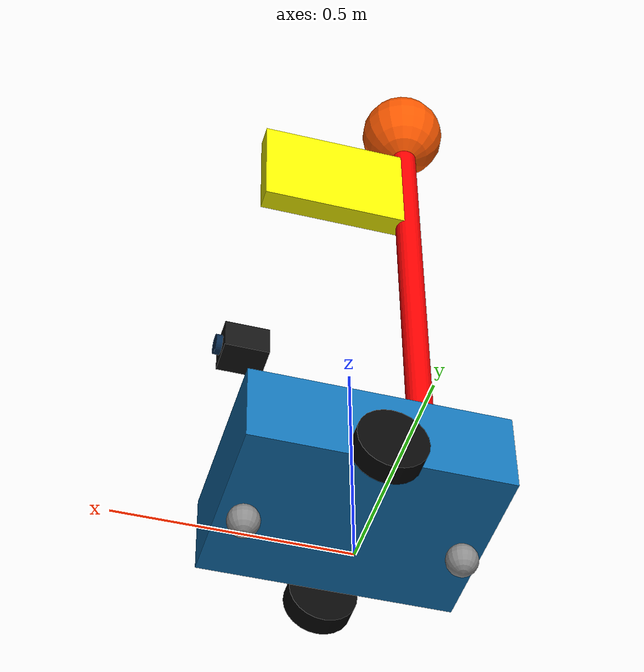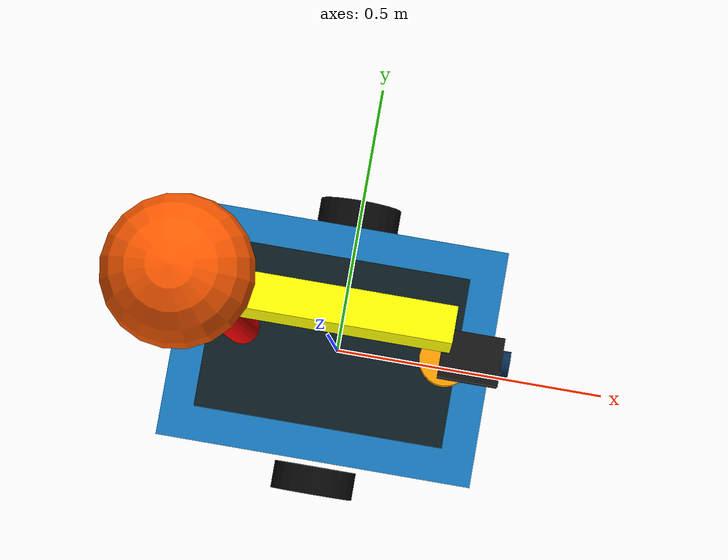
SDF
<sdf version="1.8">
  <model name="my_robot_inspection">
    <pose>0 0 0 0 0 0</pose>
    <static>false</static>
    <self_collide>false</self_collide>

    <link name="base_link">
      <pose>0 0 0.16 0 0 0</pose>
      <inertial>
        <mass>10.0</mass>
        <inertia>
          <ixx>0.15</ixx>
          <iyy>0.28</iyy>
          <izz>0.37</izz>
        </inertia>
      </inertial>

      <collision name="base_collision">
        <geometry>
          <box>
            <size>0.56 0.42 0.18</size>
          </box>
        </geometry>
      </collision>

      <visual name="base_visual">
        <geometry>
          <box>
            <size>0.56 0.42 0.18</size>
          </box>
        </geometry>
        <material>
          <ambient>0.08 0.36 0.58 1</ambient>
          <diffuse>0.08 0.46 0.72 1</diffuse>
          <specular>0.2 0.2 0.2 1</specular>
        </material>
      </visual>

      <visual name="top_panel_visual">
        <pose>0 0 0.105 0 0 0</pose>
        <geometry>
          <box>
            <size>0.44 0.30 0.03</size>
          </box>
        </geometry>
        <material>
          <ambient>0.04 0.08 0.10 1</ambient>
          <diffuse>0.04 0.10 0.12 1</diffuse>
        </material>
      </visual>
    </link>

    <link name="left_wheel">
      <pose>0 0.245 0.075 -1.5708 0 0</pose>
      <inertial>
        <mass>0.7</mass>
        <inertia>
          <ixx>0.0012</ixx>
          <iyy>0.0012</iyy>
          <izz>0.0020</izz>
        </inertia>
      </inertial>
      <collision name="collision">
        <geometry>
          <cylinder>
            <radius>0.075</radius>
            <length>0.05</length>
          </cylinder>
        </geometry>
        <surface>
          <friction>
            <ode>
              <mu>1.5</mu>
              <mu2>1.5</mu2>
            </ode>
          </friction>
        </surface>
      </collision>
      <visual name="visual">
        <geometry>
          <cylinder>
            <radius>0.075</radius>
            <length>0.05</length>
          </cylinder>
        </geometry>
        <material>
          <ambient>0.03 0.03 0.03 1</ambient>
          <diffuse>0.03 0.03 0.03 1</diffuse>
        </material>
      </visual>
    </link>

    <link name="right_wheel">
      <pose>0 -0.245 0.075 -1.5708 0 0</pose>
      <inertial>
        <mass>0.7</mass>
        <inertia>
          <ixx>0.0012</ixx>
          <iyy>0.0012</iyy>
          <izz>0.0020</izz>
        </inertia>
      </inertial>
      <collision name="collision">
        <geometry>
          <cylinder>
            <radius>0.075</radius>
            <length>0.05</length>
          </cylinder>
        </geometry>
        <surface>
          <friction>
            <ode>
              <mu>1.5</mu>
              <mu2>1.5</mu2>
            </ode>
          </friction>
        </surface>
      </collision>
      <visual name="visual">
        <geometry>
          <cylinder>
            <radius>0.075</radius>
            <length>0.05</length>
          </cylinder>
        </geometry>
        <material>
          <ambient>0.03 0.03 0.03 1</ambient>
          <diffuse>0.03 0.03 0.03 1</diffuse>
        </material>
      </visual>
    </link>

    <link name="front_castor">
      <pose>0.23 0 0.035 0 0 0</pose>
      <inertial>
        <mass>0.12</mass>
        <inertia>
          <ixx>0.0001</ixx>
          <iyy>0.0001</iyy>
          <izz>0.0001</izz>
        </inertia>
      </inertial>
      <collision name="collision">
        <geometry>
          <sphere>
            <radius>0.035</radius>
          </sphere>
        </geometry>
        <surface>
          <friction>
            <ode>
              <mu>0.05</mu>
              <mu2>0.05</mu2>
            </ode>
          </friction>
        </surface>
      </collision>
      <visual name="visual">
        <geometry>
          <sphere>
            <radius>0.035</radius>
          </sphere>
        </geometry>
        <material>
          <ambient>0.55 0.55 0.55 1</ambient>
          <diffuse>0.55 0.55 0.55 1</diffuse>
        </material>
      </visual>
    </link>

    <link name="rear_castor">
      <pose>-0.23 0 0.035 0 0 0</pose>
      <inertial>
        <mass>0.12</mass>
        <inertia>
          <ixx>0.0001</ixx>
          <iyy>0.0001</iyy>
          <izz>0.0001</izz>
        </inertia>
      </inertial>
      <collision name="collision">
        <geometry>
          <sphere>
            <radius>0.035</radius>
          </sphere>
        </geometry>
        <surface>
          <friction>
            <ode>
              <mu>0.05</mu>
              <mu2>0.05</mu2>
            </ode>
          </friction>
        </surface>
      </collision>
      <visual name="visual">
        <geometry>
          <sphere>
            <radius>0.035</radius>
          </sphere>
        </geometry>
        <material>
          <ambient>0.55 0.55 0.55 1</ambient>
          <diffuse>0.55 0.55 0.55 1</diffuse>
        </material>
      </visual>
    </link>

    <link name="lidar_link">
      <pose>0.20 0 0.32 0 0 0</pose>
      <inertial>
        <mass>0.2</mass>
        <inertia>
          <ixx>0.0002</ixx>
          <iyy>0.0002</iyy>
          <izz>0.0002</izz>
        </inertia>
      </inertial>
      <collision name="collision">
        <geometry>
          <cylinder>
            <radius>0.045</radius>
            <length>0.06</length>
          </cylinder>
        </geometry>
      </collision>
      <visual name="visual">
        <geometry>
          <cylinder>
            <radius>0.045</radius>
            <length>0.06</length>
          </cylinder>
        </geometry>
        <material>
          <ambient>1 0.62 0 1</ambient>
          <diffuse>1 0.62 0 1</diffuse>
          <emissive>0.4 0.18 0 1</emissive>
        </material>
      </visual>
      <sensor name="lidar" type="gpu_lidar">
        <pose>0 0 0 0 0 0</pose>
        <update_rate>10</update_rate>
        <lidar>
          <scan>
            <horizontal>
              <samples>720</samples>
              <resolution>1</resolution>
              <min_angle>-3.14159</min_angle>
              <max_angle>3.14159</max_angle>
            </horizontal>
          </scan>
          <range>
            <min>0.08</min>
            <max>12.0</max>
            <resolution>0.01</resolution>
          </range>
          <noise>
            <type>gaussian</type>
            <mean>0.0</mean>
            <stddev>0.01</stddev>
          </noise>
        </lidar>
        <always_on>true</always_on>
        <topic>/scan</topic>
      </sensor>
    </link>

    <link name="visibility_marker">
      <pose>-0.16 0 0.78 0 0 0</pose>
      <inertial>
        <mass>0.02</mass>
        <inertia>
          <ixx>0.00002</ixx>
          <iyy>0.00002</iyy>
          <izz>0.00002</izz>
        </inertia>
      </inertial>
      <visual name="marker_pole">
        <geometry>
          <cylinder>
            <radius>0.03</radius>
            <length>1.10</length>
          </cylinder>
        </geometry>
        <material>
          <ambient>1 0 0 1</ambient>
          <diffuse>1 0 0 1</diffuse>
          <emissive>0.5 0 0 1</emissive>
        </material>
      </visual>
      <visual name="marker_flag">
        <pose>0.18 0 0.38 0 0 0</pose>
        <geometry>
          <box>
            <size>0.36 0.05 0.24</size>
          </box>
        </geometry>
        <material>
          <ambient>1 1 0 1</ambient>
          <diffuse>1 1 0 1</diffuse>
          <emissive>0.6 0.6 0 1</emissive>
        </material>
      </visual>
      <visual name="marker_beacon">
        <pose>0 0 0.62 0 0 0</pose>
        <geometry>
          <sphere>
            <radius>0.10</radius>
          </sphere>
        </geometry>
        <material>
          <ambient>1 0.35 0 1</ambient>
          <diffuse>1 0.35 0 1</diffuse>
          <emissive>0.8 0.2 0 1</emissive>
        </material>
      </visual>
    </link>

    <link name="front_camera_link">
      <pose>0.24 0 0.52 0 0 0</pose>
      <inertial>
        <mass>0.08</mass>
        <inertia>
          <ixx>0.00008</ixx>
          <iyy>0.00008</iyy>
          <izz>0.00008</izz>
        </inertia>
      </inertial>
      <visual name="camera_body_visual">
        <geometry><box><size>0.10 0.08 0.07</size></box></geometry>
        <material>
          <ambient>0.03 0.03 0.03 1</ambient>
          <diffuse>0.08 0.08 0.08 1</diffuse>
        </material>
      </visual>
      <visual name="camera_lens_visual">
        <pose>0.055 0 0 0 1.5708 0</pose>
        <geometry><cylinder><radius>0.022</radius><length>0.018</length></cylinder></geometry>
        <material>
          <ambient>0.02 0.08 0.16 1</ambient>
          <diffuse>0.03 0.16 0.30 1</diffuse>
        </material>
      </visual>
      <sensor name="front_camera" type="camera">
        <pose>0.06 0 0 0 0 0</pose>
        <always_on>true</always_on>
        <update_rate>10</update_rate>
        <topic>/inspection/camera/image_raw</topic>
        <camera>
          <horizontal_fov>1.0472</horizontal_fov>
          <image>
            <width>640</width>
            <height>480</height>
            <format>R8G8B8</format>
          </image>
          <clip>
            <near>0.05</near>
            <far>20.0</far>
          </clip>
        </camera>
      </sensor>
    </link>

    <joint name="front_camera_joint" type="fixed">
      <parent>base_link</parent>
      <child>front_camera_link</child>
    </joint>

    <joint name="left_wheel_joint" type="revolute">
      <parent>base_link</parent>
      <child>left_wheel</child>
      <axis>
        <xyz>0 0 1</xyz>
        <limit>
          <effort>30</effort>
          <lower>-1e16</lower>
          <upper>1e16</upper>
        </limit>
      </axis>
    </joint>

    <joint name="right_wheel_joint" type="revolute">
      <parent>base_link</parent>
      <child>right_wheel</child>
      <axis>
        <xyz>0 0 1</xyz>
        <limit>
          <effort>30</effort>
          <lower>-1e16</lower>
          <upper>1e16</upper>
        </limit>
      </axis>
    </joint>

    <joint name="front_castor_joint" type="ball">
      <parent>base_link</parent>
      <child>front_castor</child>
    </joint>

    <joint name="rear_castor_joint" type="ball">
      <parent>base_link</parent>
      <child>rear_castor</child>
    </joint>

    <joint name="lidar_joint" type="fixed">
      <parent>base_link</parent>
      <child>lidar_link</child>
    </joint>

    <joint name="visibility_marker_joint" type="fixed">
      <parent>base_link</parent>
      <child>visibility_marker</child>
    </joint>

    <plugin filename="gz-sim-diff-drive-system" name="gz::sim::systems::DiffDrive">
      <left_joint>left_wheel_joint</left_joint>
      <right_joint>right_wheel_joint</right_joint>
      <wheel_separation>0.49</wheel_separation>
      <wheel_radius>0.075</wheel_radius>
      <max_linear_acceleration>0.8</max_linear_acceleration>
      <max_wheel_torque>30.0</max_wheel_torque>
      <topic>/cmd_vel</topic>
      <odom_topic>/odom</odom_topic>
      <frame_id>odom</frame_id>
      <child_frame_id>base_link</child_frame_id>
      <odom_publisher_frequency>30</odom_publisher_frequency>
      <tf_topic>/tf</tf_topic>
    </plugin>
  </model>
</sdf>
